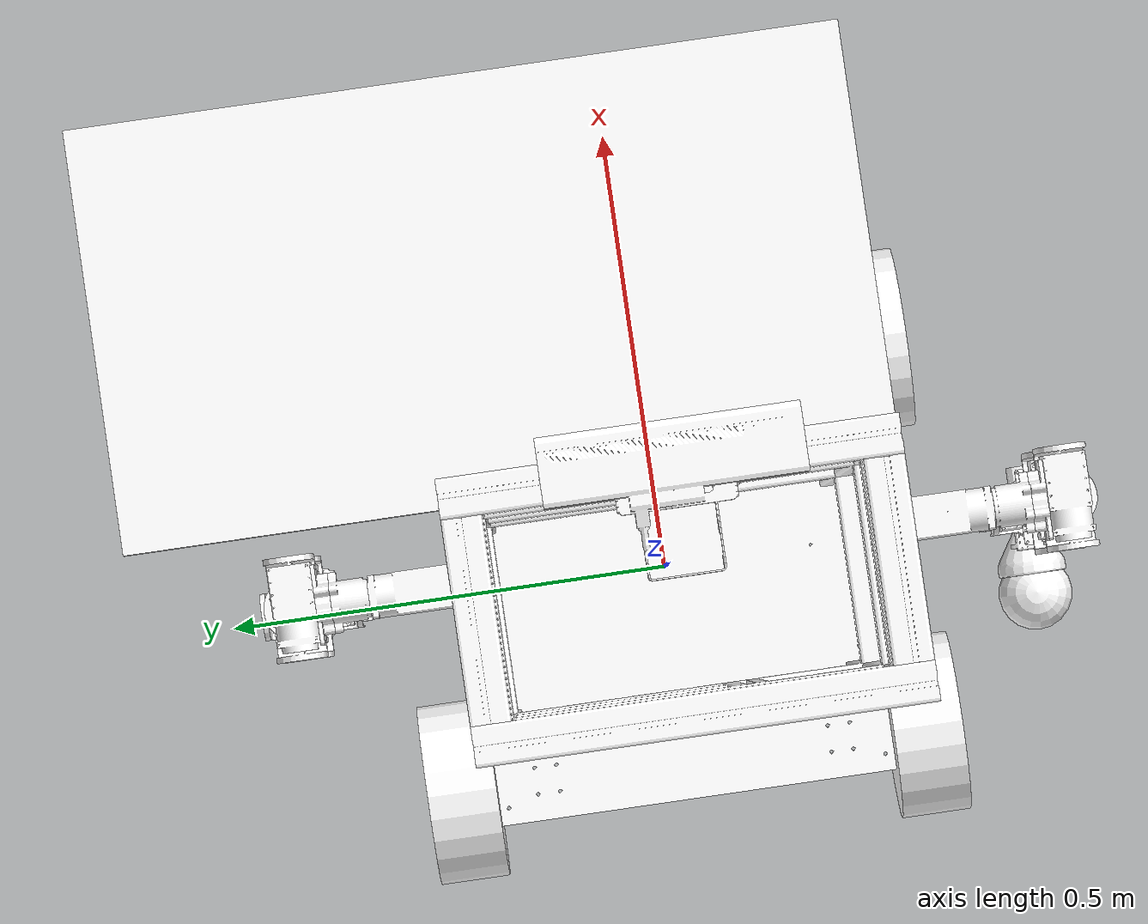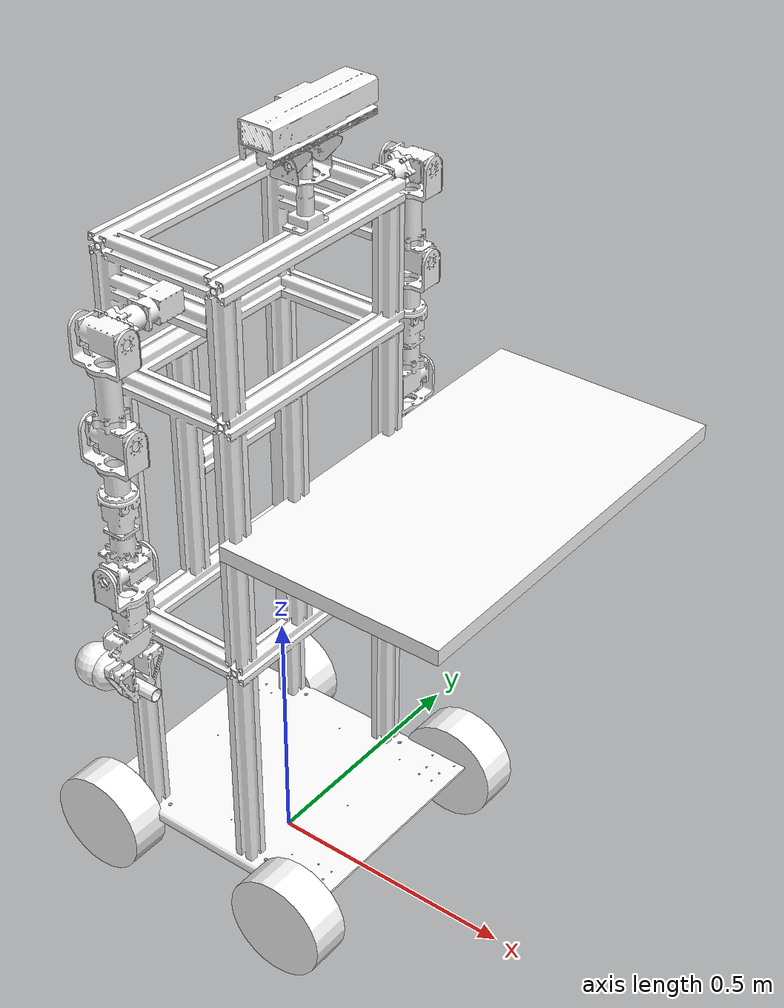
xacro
<?xml version="1.0"?>
<robot xmlns:xacro="http://ros.org/wiki/xacro" name="NKG_ROBOT">

    <!-- base, arm and gripper -->
    <xacro:include filename="$(find nkg_robot_description)/urdf/nkg_base.urdf.xacro"/>
    <xacro:include filename="$(find nkg_robot_description)/urdf/nkg_arm_l.urdf.xacro"/>
    <xacro:include filename="$(find nkg_robot_description)/urdf/nkg_arm_r.urdf.xacro"/>

    <!-- Materials for visualzation-->
    <xacro:include filename="$(find nkg_robot_description)/urdf/materials.urdf.xacro"/>

    <!-- Define arm with gripper on a base -->
    <xacro:base name="base"/>
    <xacro:arm_l parent="base"/>
    <xacro:arm_r parent="base"/>

</robot>

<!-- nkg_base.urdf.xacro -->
<robot xmlns:xacro="http://ros.org/wiki/xacro">

    <xacro:include filename="$(find nkg_robot_description)/urdf/default_macro.xacro"/>
    <xacro:property name="wheel_radius" value="0.1015"/>
    <xacro:property name="wheel_height" value="0.078"/>
    <xacro:property name="body_width" value="0.45"/>
    <xacro:property name="body_height" value="1.2"/>
    <xacro:property name="safe_zone" value="0.04"/>
    <xacro:property name="table_width" value="${0.402+safe_zone}"/>
    <xacro:property name="table_length" value="${0.766+safe_zone}"/>
    <xacro:property name="table_thick" value="${0.02+0.01}"/>
    <xacro:property name="robot_center_x" value="0.103"/>
    <xacro:property name="table_height" value="0.86"/>

    <xacro:macro name="wheel_link" params="name xyz rpy">
        <link name="${name}">
            <visual>
                <origin xyz="${xyz}" rpy="${rpy}"/>
                <geometry>
                    <cylinder length="${wheel_height}" radius="${wheel_radius}"/>
                </geometry>
                <material name="white"/>
            </visual>
            <collision>
                <origin xyz="${xyz}" rpy="${rpy}"/>
                <geometry>
                    <cylinder length="${wheel_height}" radius="${wheel_radius}"/>
                </geometry>
            </collision>
        </link>
    </xacro:macro>

    <xacro:macro name="base" params="name">
        <xacro:macro_link name="${name}_link" mesh="gunbo_body.stl" xyz="0 0 0.1365" rpy="${PI} 0 0"/>

        <xacro:macro_box name="link_table" size="${table_width} ${table_length} ${table_thick}" xyz="0.201 0.158 -${table_thick/2}" rpy="0 0 0"/>
        <xacro:joint_fixed name="joint_table" link0="${name}_link" link1="link_table" xyz="${robot_center_x} 0 ${table_height}" rpy="0 0 0"/>

        <xacro:wheel_link name="link_wheel_l1" xyz="0 0 0" rpy="0 0 0"/>
        <xacro:joint_fixed name="wheel_l1" link0="${name}_link" link1="link_wheel_l1" xyz="0.22 ${body_width/2+wheel_height/2} ${wheel_radius}" rpy="${PI/2} 0 0"/>

        <xacro:wheel_link name="link_wheel_l2" xyz="0 0 0" rpy="0 0 0"/>
        <xacro:joint_fixed name="wheel_l2" link0="${name}_link" link1="link_wheel_l2" xyz="-0.22 ${body_width/2+wheel_height/2} ${wheel_radius}" rpy="${PI/2} 0 0"/>

        <xacro:wheel_link name="link_wheel_r1" xyz="0 0 0" rpy="0 0 0"/>
        <xacro:joint_fixed name="wheel_r1" link0="${name}_link" link1="link_wheel_r1" xyz="0.22 -${body_width/2+wheel_height/2} ${wheel_radius}" rpy="${-PI/2} 0 0"/>

        <xacro:wheel_link name="link_wheel_r2" xyz="0 0 0" rpy="0 0 0"/>
        <xacro:joint_fixed name="wheel_r2" link0="${name}_link" link1="link_wheel_r2" xyz="-0.22 -${body_width/2+wheel_height/2} ${wheel_radius}" rpy="${-PI/2} 0 0"/>

        <xacro:macro_link name="link_head1" mesh="gunbo_head_1.stl" xyz="0 0 0" rpy="0 0 0"/>
        <xacro:joint_fixed name="head_1" link0="${name}_link" link1="link_head1" xyz="0.077 0 ${body_height+0.1365}" rpy="0 0 0"/>

        <xacro:macro_link name="link_head2" mesh="gunbo_head_2.stl" xyz="0 0 -0.189" rpy="${PI/2} 0 ${PI/2}"/>
        <xacro:joint_fixed name="head_2" link0="link_head1" link1="link_head2" xyz="0 0 0.0945" rpy="0 0 0"/>

        <xacro:macro_link name="link_head3" mesh="gunbo_head_3.stl" xyz="0 0 0" rpy="0 0 ${PI}"/>
        <xacro:joint_fixed name="head_3" link0="link_head2" link1="link_head3" xyz="0 0 0.017" rpy="0 0 0"/>

    </xacro:macro>
</robot>

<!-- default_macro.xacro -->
<robot xmlns:xacro="http://ros.org/wiki/xacro">

    <xacro:property name="PI" value="3.1415926536"/>
    <xacro:macro name="macro_link" params="name mesh xyz rpy">
        <link name="${name}">
            <visual>
                <origin xyz="${xyz}" rpy="${rpy}"/>
                <geometry>
                    <mesh filename="package://nkg_robot_description/meshes/${mesh}" scale="0.001 0.001 0.001"/>
                </geometry>
                <material name="white"/>
            </visual>
            <collision>
                <origin xyz="${xyz}" rpy="${rpy}"/>
                <geometry>
                    <mesh filename="package://nkg_robot_description/meshes/${mesh}" scale="0.001 0.001 0.001"/>
                </geometry>
            </collision>
        </link>
    </xacro:macro>

    <xacro:macro name="joint_fixed" params="name link0 link1 xyz rpy">
        <joint name="${name}" type="fixed">
            <parent link="${link0}"/>
            <child link="${link1}"/>
            <origin xyz="${xyz}" rpy="${rpy}"/>
        </joint>
    </xacro:macro>

    <xacro:macro name="joint_motor" params="name link0 link1 xyz rpy lower upper axis">
        <joint name="${name}" type="revolute">
            <parent link="${link0}"/>
            <child link="${link1}"/>
            <origin xyz="${xyz}" rpy="${rpy}"/>
            <limit effort="30" velocity="10" lower="${lower}" upper="${upper}"/>
            <axis xyz="${axis}"/>
        </joint>
    </xacro:macro>

    <xacro:macro name="macro_box" params="name size xyz rpy">
        <link name="${name}">
            <visual>
                <origin xyz="${xyz}" rpy="${rpy}"/>
                <geometry>
                    <box size="${size}"/>
                </geometry>
                <material name="white"/>
            </visual>
            <collision>
                <origin xyz="${xyz}" rpy="${rpy}"/>
                <geometry>
                    <box size="${size}"/>
                </geometry>
                <material name="white"/>
            </collision>
        </link>
    </xacro:macro>

</robot>

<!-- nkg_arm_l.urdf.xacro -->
<robot xmlns:xacro="http://ros.org/wiki/xacro">

    <xacro:include filename="$(find nkg_robot_description)/urdf/default_macro.xacro"/>
    <xacro:property name="body_width" value="0.45"/>
    <xacro:property name="body_height" value="1.2"/>

    <xacro:macro name="arm_l" params="parent">
        <!-- ============== Motor 8 ============== -->
        <xacro:macro_link name="M8_link" mesh="h42_20.stl" xyz="0 0.084 0" rpy="-${PI/2} 0 0"/>
        <xacro:joint_fixed name="arm_l_base_joint" link0="${parent}_link" link1="M8_link" xyz="0 ${body_width/2} ${body_height+0.0825}" rpy="0 0 0"/>

        <xacro:macro_link name="arml_1_1_link" mesh="NKG_ARM_A.stl" xyz="0 0.0325 0" rpy="-${PI/2} 0 0"/>
        <xacro:joint_motor name="M8_joint" link0="M8_link" link1="arml_1_1_link" xyz="0 0.084 0" rpy="0 0 0" lower="-${PI*2/3}" upper="${PI*2/3}" axis="0 1 0"/>

        <!-- ============== Motor 9 ============== -->
        <xacro:macro_link name="arml_1_2_link" mesh="NKG_ARM_B.stl" xyz="0 0 0" rpy="${PI/2} 0 0"/>
        <xacro:joint_fixed name="arml_1_1_link_joint" link0="arml_1_1_link" link1="arml_1_2_link" xyz="0 0.0325 0" rpy="0 0 0"/>

        <xacro:macro_link name="M9_link" mesh="h42_20.stl" xyz="-0.042 0.021 0" rpy="0 -${PI/2} 0"/>
        <xacro:joint_fixed name="arml_1_2_link_joint" link0="arml_1_2_link" link1="M9_link" xyz="0 0.015 0" rpy="0 0 0"/>

        <xacro:macro_link name="arml_2_1_link" mesh="ARM_1.stl" xyz="0 0 -0.0145" rpy="0 ${PI/2} -${PI/2}"/>
        <xacro:joint_motor name="M9_joint" link0="M9_link" link1="arml_2_1_link" xyz="0 0.021 0" rpy="0 0 0" lower="-${PI*2/3}" upper="${PI*2/3}" axis="-1 0 0"/>

        <!-- ============== Motor 10 ============== -->
        <xacro:macro_link name="arml_2_2_link" mesh="ARM_2.stl" xyz="0 0 -0.043525" rpy="0 0 ${PI/6}"/>
        <xacro:joint_fixed name="arml_2_1_joint" link0="arml_2_1_link" link1="arml_2_2_link" xyz="0 0 -0.053" rpy="0 0 0"/>

        <xacro:macro_link name="arml_2_3_link" mesh="NKG_ARM_B.stl" xyz="0 0 0" rpy="0 0 0"/>
        <xacro:joint_fixed name="arml_2_2_joint" link0="arml_2_2_link" link1="arml_2_3_link" xyz="0 0 -0.08705" rpy="0 0 0"/>

        <xacro:macro_link name="M10_link" mesh="h42_20.stl" xyz="-0.042 0 -0.021" rpy="0 -${PI/2} 0"/>
        <xacro:joint_fixed name="arml_2_3_joint" link0="arml_2_3_link" link1="M10_link" xyz="0 0 -0.015" rpy="0 0 0"/>

        <xacro:macro_link name="arml_3_1_link" mesh="ARM_1.stl" xyz="0 0 -0.0145" rpy="0 ${PI/2} -${PI/2}"/>
        <xacro:joint_motor name="M10_joint" link0="M10_link" link1="arml_3_1_link" xyz="0 0 -0.021" rpy="0 0 0" lower="-${PI/6}" upper="${PI*2/3}" axis="-1 0 0"/>

        <!-- ============== Motor 11 ============== -->
        <xacro:macro_link name="arml_3_2_link" mesh="ARM_4.stl" xyz="0 0 -0.0265" rpy="-${PI} 0 0"/>
        <xacro:joint_fixed name="arml_3_1_joint" link0="arml_3_1_link" link1="arml_3_2_link" xyz="0 0 -0.053" rpy="0 0 0"/>

        <xacro:macro_link name="arml_3_3_link" mesh="ARM_3.stl" xyz="0 0 -0.0115" rpy="0 -${PI/2} ${PI/2}"/>
        <xacro:joint_fixed name="arml_3_2_joint" link0="arml_3_2_link" link1="arml_3_3_link" xyz="0 0 -0.053" rpy="0 0 0"/>

        <xacro:macro_link name="M11_link" mesh="m42_10.stl" xyz="0 0 -0.066" rpy="-${PI/2} 0 0"/>
        <xacro:joint_fixed name="arml_3_3_joint" link0="arml_3_3_link" link1="M11_link" xyz="0 0 -0.005" rpy="0 0 0"/>

        <xacro:macro_link name="arml_4_1_link" mesh="NKG_ARM_A.stl" xyz="0 0 -0.0325" rpy="${PI} 0 ${PI/6}"/>
        <xacro:joint_motor name="M11_joint" link0="M11_link" link1="arml_4_1_link" xyz="0 0 -0.072" rpy="0 0 0" lower="-${PI*6/5}" upper="${PI*6/5}" axis="0 0 -1"/>

        <!-- ============== Motor 12 ============== -->
        <xacro:macro_link name="arml_4_2_link" mesh="NKG_ARM_B.stl" xyz="0 0 0" rpy="0 0 ${PI/2}"/>
        <xacro:joint_fixed name="arml_4_1_joint" link0="arml_4_1_link" link1="arml_4_2_link" xyz="0 0 -0.0325" rpy="0 0 0"/>

        <xacro:macro_link name="M12_link" mesh="h42_20.stl" xyz="0 0.042 -0.021" rpy="0 -${PI/2} -${PI/2}"/>
        <xacro:joint_fixed name="arml_4_2_joint" link0="arml_4_2_link" link1="M12_link" xyz="0 0 -0.015" rpy="0 0 0"/>

        <xacro:macro_link name="arml_5_1_link" mesh="ARM_1.stl" xyz="0 0 -0.0145" rpy="0 ${PI/2} 0"/>
        <xacro:joint_motor name="M12_joint" link0="M12_link" link1="arml_5_1_link" xyz="0 0 -0.021" rpy="0 0 0" lower="-${PI*5/6}" upper="${PI/6}" axis="0 1 0"/>

        <!-- ============== Motor 13 ============== -->
        <xacro:macro_link name="arml_5_2_link" mesh="ARM_3.stl" xyz="0 0 -0.0115" rpy="0 -${PI/2} 0"/>
        <xacro:joint_fixed name="arml_5_1_joint" link0="arml_5_1_link" link1="arml_5_2_link" xyz="0 0 -0.053" rpy="0 0 0"/>

        <xacro:macro_link name="M13_link" mesh="m42_10.stl" xyz="0 0 -0.066" rpy="-${PI/2} 0 0"/>
        <xacro:joint_fixed name="arml_5_2_joint" link0="arml_5_2_link" link1="M13_link" xyz="0 0 -0.005" rpy="0 0 0"/>

        <xacro:macro_link name="grip_l_box_link" mesh="NKG_ARM_BOX.stl" xyz="0 0 0" rpy="0 0 ${PI/2}"/>
        <xacro:joint_motor name="M13_joint" link0="M13_link" link1="grip_l_box_link" xyz="0 0 -0.072" rpy="0 0 0" lower="-${PI/2}" upper="${PI/2}" axis="0 0 -1"/>

        <!-- ============== gripper left ============== -->
        <xacro:macro_link name="grip_l_l_link" mesh="NKG_ARM_GRIPPER.stl" xyz="0 -0.013 -0.005" rpy="${PI/2} 0 ${PI/2}"/>
        <joint name="M14_joint" type="prismatic">
            <parent link="grip_l_box_link"/>
            <child link="grip_l_l_link"/>
            <origin xyz="0 0 -0.125" rpy="0 0 0"/>
            <axis xyz="0 1 0"/>
            <limit effort="300.0" lower="-0.0220" upper="0.013" velocity="1.0"/>
        </joint>

        <xacro:macro_link name="grip_l_r_link" mesh="NKG_ARM_GRIPPER.stl" xyz="0 0.01 -0.005" rpy="${PI/2} 0 -${PI/2}"/>
        <joint name="grip_l_r_joint" type="fixed">
            <parent link="grip_l_box_link"/>
            <child link="grip_l_r_link"/>
            <origin xyz="0 0 -0.125" rpy="0 0 0"/>
        </joint>

	<!-- ============== gripper end ============== -->
    </xacro:macro>
</robot>

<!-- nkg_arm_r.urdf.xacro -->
<robot xmlns:xacro="http://ros.org/wiki/xacro">

    <xacro:include filename="$(find nkg_robot_description)/urdf/default_macro.xacro"/>
    <xacro:property name="body_width" value="0.45"/>
    <xacro:property name="body_height" value="1.2"/>

    <xacro:macro name="arm_r" params="parent">
        <!-- ============== Motor 1 ============== -->
        <xacro:macro_link name="M1_link" mesh="h42_20.stl" xyz="0 -0.084 0" rpy="${PI/2} 0 0"/>
        <xacro:joint_fixed name="arm_r_base_joint" link0="${parent}_link" link1="M1_link" xyz="0 -${body_width/2} ${body_height+0.0825}" rpy="0 0 0"/>

        <xacro:macro_link name="armr_1_1_link" mesh="NKG_ARM_A.stl" xyz="0 -0.0325 0" rpy="${PI/2} 0 0"/>
        <xacro:joint_motor name="M1_joint" link0="M1_link" link1="armr_1_1_link" xyz="0 -0.084 0" rpy="0 0 0" lower="-${PI/2}" upper="${PI/2}" axis="0 -1 0"/>

        <!-- ============== Motor 2 ============== -->
        <xacro:macro_link name="armr_1_2_link" mesh="NKG_ARM_B.stl" xyz="0 0 0" rpy="-${PI/2} 0 0"/>
        <xacro:joint_fixed name="armr_1_1_link_joint" link0="armr_1_1_link" link1="armr_1_2_link" xyz="0 -0.0325 0" rpy="0 0 0"/>

        <xacro:macro_link name="M2_link" mesh="h42_20.stl" xyz="-0.042 -0.021 0" rpy="0 -${PI/2} 0"/>
        <xacro:joint_fixed name="armr_1_2_link_joint" link0="armr_1_2_link" link1="M2_link" xyz="0 -0.015 0" rpy="0 0 0"/>

        <xacro:macro_link name="armr_2_1_link" mesh="ARM_1.stl" xyz="0 0 -0.0145" rpy="0 ${PI/2} -${PI/2}"/>
        <xacro:joint_motor name="M2_joint" link0="M2_link" link1="armr_2_1_link" xyz="0 -0.021 0" rpy="0 0 0" lower="-${PI/2}" upper="${PI/2}" axis="-1 0 0"/>

        <!-- ============== Motor 3 ============== -->
        <xacro:macro_link name="armr_2_2_link" mesh="ARM_2.stl" xyz="0 0 -0.043525" rpy="0 0 ${PI/6}"/>
        <xacro:joint_fixed name="armr_2_1_joint" link0="armr_2_1_link" link1="armr_2_2_link" xyz="0 0 -0.053" rpy="0 0 0"/>

        <xacro:macro_link name="armr_2_3_link" mesh="NKG_ARM_B.stl" xyz="0 0 0" rpy="0 0 0"/>
        <xacro:joint_fixed name="armr_2_2_joint" link0="armr_2_2_link" link1="armr_2_3_link" xyz="0 0 -0.08705" rpy="0 0 0"/>

        <xacro:macro_link name="M3_link" mesh="h42_20.stl" xyz="-0.042 0 -0.021" rpy="0 -${PI/2} 0"/>
        <xacro:joint_fixed name="armr_2_3_joint" link0="armr_2_3_link" link1="M3_link" xyz="0 0 -0.015" rpy="0 0 0"/>

        <xacro:macro_link name="armr_3_1_link" mesh="ARM_1.stl" xyz="0 0 -0.0145" rpy="0 ${PI/2} -${PI/2}"/>
        <xacro:joint_motor name="M3_joint" link0="M3_link" link1="armr_3_1_link" xyz="0 0 -0.021" rpy="0 0 0" lower="-${PI*5/6}" upper="${PI/6}" axis="-1 0 0"/>

        <!-- ============== Motor 4 ============== -->
        <xacro:macro_link name="armr_3_2_link" mesh="ARM_4.stl" xyz="0 0 -0.0265" rpy="-${PI} 0 0"/>
        <xacro:joint_fixed name="armr_3_1_joint" link0="armr_3_1_link" link1="armr_3_2_link" xyz="0 0 -0.053" rpy="0 0 0"/>

        <xacro:macro_link name="armr_3_3_link" mesh="ARM_3.stl" xyz="0 0 -0.0115" rpy="0 -${PI/2} ${PI/2}"/>
        <xacro:joint_fixed name="armr_3_2_joint" link0="armr_3_2_link" link1="armr_3_3_link" xyz="0 0 -0.053" rpy="0 0 0"/>

        <xacro:macro_link name="M4_link" mesh="m42_10.stl" xyz="0 0 -0.066" rpy="-${PI/2} 0 0"/>
        <xacro:joint_fixed name="armr_3_3_joint" link0="armr_3_3_link" link1="M4_link" xyz="0 0 -0.005" rpy="0 0 0"/>

        <xacro:macro_link name="armr_4_1_link" mesh="NKG_ARM_A.stl" xyz="0 0 -0.0325" rpy="${PI} 0 ${PI/6}"/>
        <xacro:joint_motor name="M4_joint" link0="M4_link" link1="armr_4_1_link" xyz="0 0 -0.072" rpy="0 0 0" lower="-${PI*6/5}" upper="${PI*6/5}" axis="0 0 -1"/>

        <!-- ============== Motor 5 ============== -->
        <xacro:macro_link name="armr_4_2_link" mesh="NKG_ARM_B.stl" xyz="0 0 0" rpy="0 0 0"/>
        <xacro:joint_fixed name="armr_4_1_joint" link0="armr_4_1_link" link1="armr_4_2_link" xyz="0 0 -0.0325" rpy="0 0 0"/>

        <xacro:macro_link name="M5_link" mesh="h42_20.stl" xyz="0 -0.042 -0.021" rpy="0 -${PI/2} ${PI/2}"/>
        <xacro:joint_fixed name="armr_4_2_joint" link0="armr_4_2_link" link1="M5_link" xyz="0 0 -0.015" rpy="0 0 0"/>

        <xacro:macro_link name="armr_5_1_link" mesh="ARM_1.stl" xyz="0 0 -0.0145" rpy="0 ${PI/2} ${PI}"/>
        <xacro:joint_motor name="M5_joint" link0="M5_link" link1="armr_5_1_link" xyz="0 0 -0.021" rpy="0 0 0" lower="-${PI/6}" upper="${PI*5/6}" axis="0 -1 0"/>

        <!-- ============== Motor 6 ============== -->
        <xacro:macro_link name="armr_5_2_link" mesh="ARM_3.stl" xyz="0 0 -0.0115" rpy="0 -${PI/2} 0"/>
        <xacro:joint_fixed name="armr_5_1_joint" link0="armr_5_1_link" link1="armr_5_2_link" xyz="0 0 -0.053" rpy="0 0 0"/>

        <xacro:macro_link name="M6_link" mesh="m42_10.stl" xyz="0 0 -0.066" rpy="-${PI/2} 0 0"/>
        <xacro:joint_fixed name="armr_5_2_joint" link0="armr_5_2_link" link1="M6_link" xyz="0 0 -0.005" rpy="0 0 0"/>

        <xacro:macro_link name="grip_r_box_link" mesh="NKG_ARM_BOX.stl" xyz="0 0 0" rpy="0 0 -${PI/2}"/>
        <xacro:joint_motor name="M6_joint" link0="M6_link" link1="grip_r_box_link" xyz="0 0 -0.072" rpy="0 0 0" lower="-${PI/2}" upper="${PI/2}" axis="0 0 -1"/>

        <!-- ============== gripper left ============== -->
        <xacro:macro_link name="grip_r_l_link" mesh="NKG_ARM_GRIPPER.stl" xyz="0 -0.01 -0.08" rpy="${PI/2} 0 ${PI/2}"/>
        <joint name="grip_r_l_joint" type="fixed">
            <parent link="grip_r_box_link"/>
            <child link="grip_r_l_link"/>
            <origin xyz="0 0 -0.0515" rpy="0 0 0"/>
        </joint>

        <xacro:macro_link name="grip_r_r_link" mesh="NKG_ARM_GRIPPER.stl" xyz="0 0.01 -0.08" rpy="${PI/2} 0 -${PI/2}"/>
        <joint name="grip_r_r_joint" type="fixed">
            <parent link="grip_r_box_link"/>
            <child link="grip_r_r_link"/>
            <origin xyz="0 0 -0.0515" rpy="0 0 0"/>
        </joint>

        <xacro:macro_link name="grip_r_funnel_link" mesh="funnel.stl" xyz="0.04625 0 0" rpy="0 -${PI/2} 0"/>
        <xacro:joint_fixed name="grip_r_funnel_joint" link0="grip_r_r_link" link1="grip_r_funnel_link" xyz="0 0 -0.062" rpy="0 0 0"/>

        <link name="grip_r_ball">
            <visual>
                <origin xyz="0 0 0" rpy="0 0 0"/>
                <geometry>
                    <sphere radius="0.039"/>
                </geometry>
                <material name="white"/>
            </visual>
            <collision>
                <origin xyz="0.039 0 0" rpy="0 0 0"/>
                <geometry>
                    <sphere radius="0.025"/>
                </geometry>
            </collision>
        </link>
        <joint name="grip_r_ball_joint" type="fixed">
            <parent link="grip_r_funnel_link"/>
            <child link="grip_r_ball"/>
            <origin xyz="-0.089 0 0" rpy="0 0 0"/>
        </joint>
	<!-- ============== gripper end ============== -->

    </xacro:macro>
</robot>

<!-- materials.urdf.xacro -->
<robot>
    <material name="gray">
        <color rgba="0.5 0.5 0.5 2.0"/>
    </material>

    <material name="white">
        <color rgba="1.0 1.0 1.0 1.5"/>
    </material>

    <material name="black">
        <color rgba="0.0 0.0 0.0 1.5"/>
    </material>

</robot>
